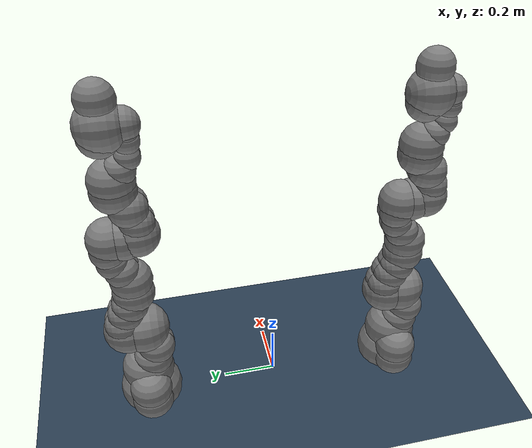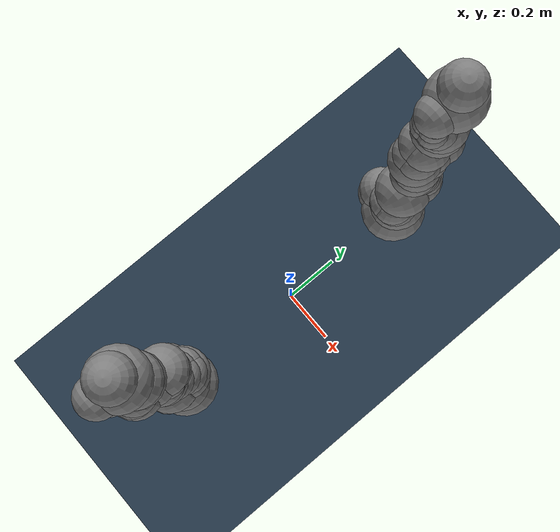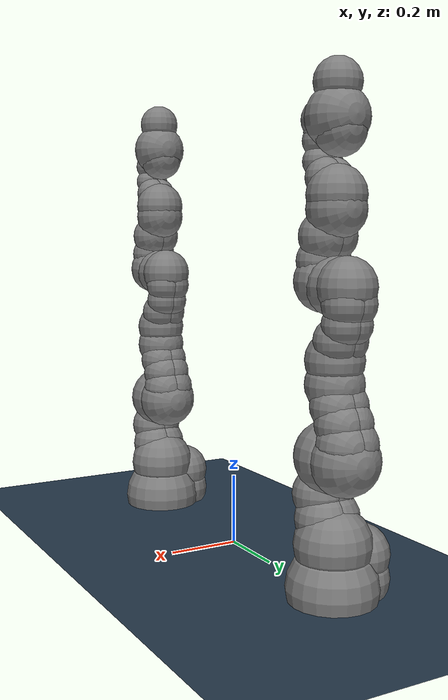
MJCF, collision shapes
<mujoco model="iiwa14 scene">
  <compiler angle="radian" meshdir="assets" autolimits="true"/>
  <option integrator="implicitfast"/>

  <default>
    <default class="iiwa">
      <material specular="0.5" shininess="0.25"/>
      <joint axis="0 0 1"/>
      <general gaintype="fixed" biastype="affine" gainprm="2000" biasprm="0 -2000 -200"/>
      <default class="joint1">
        <joint range="-2.96706 2.96706"/>
        <general ctrlrange="-2.96706 2.96706"/>
        <default class="joint2">
          <joint range="-2.0944 2.0944"/>
          <general ctrlrange="-2.0944 2.0944"/>
        </default>
      </default>
      <default class="joint3">
        <joint range="-3.05433 3.05433"/>
        <general ctrlrange="-3.05433 3.05433"/>
      </default>
      <default class="visual">
        <geom type="mesh" contype="0" conaffinity="0" group="2" material="gray"/>
      </default>
      <default class="collision">
        <geom group="3"/>
      </default>
      <site size="0.001" rgba="1 0 0 1" group="4"/>
    </default>
  </default>

  <asset>
    <material class="iiwa" name="gray" rgba="0.4 0.4 0.4 1"/>
    <material class="iiwa" name="light_gray" rgba="0.6 0.6 0.6 1"/>
    <material class="iiwa" name="black" rgba="0 0 0 1"/>
    <material class="iiwa" name="orange" rgba="1 0.423529 0.0392157 1"/>

    <mesh file="link_0.obj"/>
    <mesh file="link_1.obj"/>
    <mesh file="link_2_orange.obj"/>
    <mesh file="link_2_grey.obj"/>
    <mesh file="link_3.obj"/>
    <mesh file="band.obj"/>
    <mesh file="kuka.obj"/>
    <mesh file="link_4_orange.obj"/>
    <mesh file="link_4_grey.obj"/>
    <mesh file="link_5.obj"/>
    <mesh file="link_6_orange.obj"/>
    <mesh file="link_6_grey.obj"/>
    <mesh file="link_7.obj"/>
  </asset>

  <statistic center="0.3 0 0.4" extent="0.8" meansize="0.08"/>

  <visual>
    <headlight diffuse="0.6 0.6 0.6" ambient="0.1 0.1 0.1" specular="0 0 0"/>
    <global azimuth="120" elevation="-20"/>
  </visual>

  <asset>
    <texture name="grid" type="2d" builtin="checker" rgb1=".2 .3 .4" rgb2=".1 0.15 0.2" width="512" height="512"
      mark="cross" markrgb=".8 .8 .8"/>
    <material name="grid" texture="grid" texrepeat="1 1" texuniform="true"/>
  </asset>

  <worldbody>
    <light pos="0 0 1.5" directional="true"/>
    <geom name="floor" size="1 1 0.01" type="plane" material="grid"/>
  </worldbody>

  <include file="iiwa14_left.xml"/>

  <include file="iiwa14_right.xml"/>

  <actuator>
    <!-- 左臂执行器 -->
    <general name="left_actuator1" joint="left_joint1" class="joint1"/>
    <general name="left_actuator2" joint="left_joint2" class="joint2"/>
    <general name="left_actuator3" joint="left_joint3" class="joint1"/>
    <general name="left_actuator4" joint="left_joint4" class="joint2"/>
    <general name="left_actuator5" joint="left_joint5" class="joint1"/>
    <general name="left_actuator6" joint="left_joint6" class="joint2"/>
    <general name="left_actuator7" joint="left_joint7" class="joint3"/>

    <!-- 右臂执行器 -->
    <general name="right_actuator1" joint="right_joint1" class="joint1"/>
    <general name="right_actuator2" joint="right_joint2" class="joint2"/>
    <general name="right_actuator3" joint="right_joint3" class="joint1"/>
    <general name="right_actuator4" joint="right_joint4" class="joint2"/>
    <general name="right_actuator5" joint="right_joint5" class="joint1"/>
    <general name="right_actuator6" joint="right_joint6" class="joint2"/>
    <general name="right_actuator7" joint="right_joint7" class="joint3"/>
  </actuator>

  <contact>
        <!-- Left arm internal excludes -->
    <exclude body1="left_base"    body2="left_link1"/>
    <exclude body1="left_base"    body2="left_link2"/>
    <exclude body1="left_base"    body2="left_link3"/>
    <exclude body1="left_link1"   body2="left_link3"/>
    <exclude body1="left_link3"   body2="left_link5"/>
    <exclude body1="left_link4"   body2="left_link7"/>
    <exclude body1="left_link5"   body2="left_link7"/>

    <!-- Right arm internal excludes -->
    <exclude body1="right_base"   body2="right_link1"/>
    <exclude body1="right_base"   body2="right_link2"/>
    <exclude body1="right_base"   body2="right_link3"/>
    <exclude body1="right_link1"  body2="right_link3"/>
    <exclude body1="right_link3"  body2="right_link5"/>
    <exclude body1="right_link4"  body2="right_link7"/>
    <exclude body1="right_link5"  body2="right_link7"/>
  </contact>
</mujoco>

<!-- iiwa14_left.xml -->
<mujoco model="iiwa14">
  <compiler angle="radian" meshdir="assets" autolimits="true"/>

  <option integrator="implicitfast"/>

  <default>
    <default class="iiwa">
      <material specular="0.5" shininess="0.25"/>
      <joint axis="0 0 1"/>
      <general gaintype="fixed" biastype="affine" gainprm="2000" biasprm="0 -2000 -200"/>
      <default class="joint1">
        <joint range="-2.96706 2.96706"/>
        <general ctrlrange="-2.96706 2.96706"/>
        <default class="joint2">
          <joint range="-2.0944 2.0944"/>
          <general ctrlrange="-2.0944 2.0944"/>
        </default>
      </default>
      <default class="joint3">
        <joint range="-3.05433 3.05433"/>
        <general ctrlrange="-3.05433 3.05433"/>
      </default>
      <default class="visual">
        <geom type="mesh" contype="0" conaffinity="0" group="2" material="gray"/>
      </default>
      <default class="collision">
        <geom group="3"/>
      </default>
      <site size="0.001" rgba="1 0 0 1" group="4"/>
    </default>
  </default>

  <asset>
    <material class="iiwa" name="gray" rgba="0.4 0.4 0.4 1"/>
    <material class="iiwa" name="light_gray" rgba="0.6 0.6 0.6 1"/>
    <material class="iiwa" name="black" rgba="0 0 0 1"/>
    <material class="iiwa" name="orange" rgba="1 0.423529 0.0392157 1"/>

    <mesh file="link_0.obj"/>
    <mesh file="link_1.obj"/>
    <mesh file="link_2_orange.obj"/>
    <mesh file="link_2_grey.obj"/>
    <mesh file="link_3.obj"/>
    <mesh file="band.obj"/>
    <mesh file="kuka.obj"/>
    <mesh file="link_4_orange.obj"/>
    <mesh file="link_4_grey.obj"/>
    <mesh file="link_5.obj"/>
    <mesh file="link_6_orange.obj"/>
    <mesh file="link_6_grey.obj"/>
    <mesh file="link_7.obj"/>
  </asset>

  <worldbody>
    <light name="top" pos="0 0 2" mode="trackcom"/>
    <body name="base" pos="0 0.5 0" childclass="iiwa">
      <inertial mass="5" pos="-0.1 0 0.07" diaginertia="0.05 0.06 0.03"/>
      <geom class="visual" mesh="link_0"/>
      <geom class="collision" size="0.12" pos="0 0 0.03"/>
      <geom class="collision" size="0.08" pos="-0.08 0 0.103"/>
      <geom class="collision" size="0.08" pos="-0.08 0 0.04"/>
      <geom class="collision" size="0.1" pos="0 0 0.14"/>
      <body name="link1" pos="0 0 0.1575">
        <inertial mass="5.76" pos="0 -0.03 0.12" diaginertia="0.0333 0.033 0.0123"/>
        <joint name="joint1" class="joint1"/>
        <geom class="visual" mesh="link_1"/>
        <geom class="collision" size="0.08" pos="0 0 -0.0005"/>
        <geom class="collision" size="0.075" pos="0.01 -0.025 0.0425"/>
        <geom class="collision" size="0.075" pos="-0.01 -0.025 0.0425"/>
        <geom class="collision" size="0.07" pos="0.01 -0.045 0.1025"/>
        <geom class="collision" size="0.07" pos="-0.01 -0.045 0.1025"/>
        <body name="link2" pos="0 0 0.2025" quat="0 0 1 1">
          <inertial mass="6.35" pos="0.0003 0.059 0.042" diaginertia="0.0305 0.0304 0.011" quat="0 0 1 1"/>
          <joint name="joint2" class="joint2"/>
          <geom class="visual" material="orange" mesh="link_2_orange"/>
          <geom class="visual" mesh="link_2_grey"/>
          <geom class="collision" size="0.095" pos="0 0 -0.01"/>
          <geom class="collision" size="0.09" pos="0 0 0.045"/>
          <geom class="collision" size="0.07" pos="-0.01 0.04 0.054"/>
          <geom class="collision" size="0.065" pos="-0.01 0.09 0.04"/>
          <geom class="collision" size="0.065" pos="-0.01 0.13 0.02"/>
          <geom class="collision" size="0.07" pos="0.01 0.04 0.054"/>
          <geom class="collision" size="0.065" pos="0.01 0.09 0.04"/>
          <geom class="collision" size="0.065" pos="0.01 0.13 0.02"/>
          <geom class="collision" size="0.075" pos="0 0.18 0"/>
          <body name="link3" pos="0 0.2045 0" quat="0 0 1 1">
            <inertial mass="3.5" pos="0 0.03 0.13" diaginertia="0.025 0.0238 0.0076"/>
            <joint name="joint3" class="joint1"/>
            <geom class="visual" mesh="link_3"/>
            <geom class="visual" material="light_gray" mesh="band"/>
            <geom class="visual" material="black" mesh="kuka"/>
            <geom class="collision" size="0.075" pos="0 0 0.0355"/>
            <geom class="collision" size="0.06" pos="0.01 0.023 0.0855"/>
            <geom class="collision" size="0.055" pos="0.01 0.048 0.1255"/>
            <geom class="collision" size="0.06" pos="0.01 0.056 0.1755"/>
            <geom class="collision" size="0.06" pos="-0.01 0.023 0.0855"/>
            <geom class="collision" size="0.055" pos="-0.01 0.048 0.1255"/>
            <geom class="collision" size="0.06" pos="-0.01 0.056 0.1755"/>
            <geom class="collision" size="0.075" pos="0 0.045 0.2155"/>
            <geom class="collision" size="0.075" pos="0 0 0.2155"/>
            <body name="link4" pos="0 0 0.2155" quat="1 1 0 0">
              <inertial mass="3.5" pos="0 0.067 0.034" diaginertia="0.017 0.0164 0.006" quat="1 1 0 0"/>
              <joint name="joint4" class="joint2"/>
              <geom class="visual" material="orange" mesh="link_4_orange"/>
              <geom class="visual" mesh="link_4_grey"/>
              <geom class="collision" size="0.078" pos="0 0.01 0.046"/>
              <geom class="collision" size="0.06" pos="0.01 0.06 0.052"/>
              <geom class="collision" size="0.065" pos="0.01 0.12 0.034"/>
              <geom class="collision" size="0.06" pos="-0.01 0.06 0.052"/>
              <geom class="collision" size="0.065" pos="-0.01 0.12 0.034"/>
              <geom class="collision" size="0.075" pos="0 0.184 0"/>
              <body name="link5" pos="0 0.1845 0" quat="0 0 1 1">
                <inertial mass="3.5" pos="0.0001 0.021 0.076" diaginertia="0.01 0.0087 0.00449"/>
                <joint name="joint5" class="joint1"/>
                <geom class="visual" mesh="link_5"/>
                <geom class="visual" material="light_gray" mesh="band"/>
                <geom class="visual" material="black" mesh="kuka"/>
                <geom class="collision" size="0.075" pos="0 0 0.0335"/>
                <geom class="collision" size="0.05" pos="-0.012 0.031 0.0755"/>
                <geom class="collision" size="0.05" pos="0.012 0.031 0.0755"/>
                <geom class="collision" size="0.04" pos="-0.012 0.06 0.1155"/>
                <geom class="collision" size="0.04" pos="0.012 0.06 0.1155"/>
                <geom class="collision" size="0.04" pos="-0.01 0.065 0.1655"/>
                <geom class="collision" size="0.04" pos="0.01 0.065 0.1655"/>
                <geom class="collision" size="0.035" pos="-0.012 0.065 0.1855"/>
                <geom class="collision" size="0.035" pos="0.012 0.065 0.1855"/>
                <body name="link6" pos="0 0 0.2155" quat="1 1 0 0">
                  <inertial mass="1.8" pos="0 0.0006 0.0004" diaginertia="0.0049 0.0047 0.0036" quat="1 1 0 0"/>
                  <joint name="joint6" class="joint2"/>
                  <geom class="visual" material="orange" mesh="link_6_orange"/>
                  <geom class="visual" mesh="link_6_grey"/>
                  <geom class="collision" size="0.055" pos="0 0 -0.059"/>
                  <geom class="collision" size="0.065" pos="0 -0.03 0.011"/>
                  <geom class="collision" size="0.08"/>
                  <body name="link7" pos="0 0.081 0" quat="0 0 1 1">
                    <inertial mass="1.2" pos="0 0 0.02" diaginertia="0.001 0.001 0.001"/>
                    <joint name="joint7" class="joint3"/>
                    <geom class="visual" mesh="link_7"/>
                    <geom class="collision" size="0.06" pos="0 0 0.001"/>
                    <site pos="0 0 0.045" name="attachment_site"/>
<!--                      &lt;!&ndash; 夹爪基座 &ndash;&gt;-->
<!--                      &lt;!&ndash; 可视化夹爪底座（可选） &ndash;&gt;-->

<!--                      &lt;!&ndash; 左手指 &ndash;&gt;-->

<!--                      &lt;!&ndash; 右手指 &ndash;&gt;-->
                  </body>
                </body>
              </body>
            </body>
          </body>
        </body>
      </body>
    </body>
  </worldbody>

  <contact>
    <exclude body1="base" body2="link1"/>
    <exclude body1="base" body2="link2"/>
    <exclude body1="base" body2="link3"/>
    <exclude body1="link1" body2="link3"/>
    <exclude body1="link3" body2="link5"/>
    <exclude body1="link4" body2="link7"/>
    <exclude body1="link5" body2="link7"/>
  </contact>

  <actuator>
    <general name="actuator1" joint="joint1" class="joint1"/>
    <general name="actuator2" joint="joint2" class="joint2"/>
    <general name="actuator3" joint="joint3" class="joint1"/>
    <general name="actuator4" joint="joint4" class="joint2"/>
    <general name="actuator5" joint="joint5" class="joint1"/>
    <general name="actuator6" joint="joint6" class="joint2"/>
    <general name="actuator7" joint="joint7" class="joint3"/>

  </actuator>

  <keyframe>
    <key name="home" qpos="0 0 0 -1.5708 0 1.5708 0" ctrl="0 0 0 -1.5708 0 1.5708 0"/>
  </keyframe>
</mujoco>

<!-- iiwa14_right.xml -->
<mujoco model="iiwa14">
  <compiler angle="radian" meshdir="assets" autolimits="true"/>

  <option integrator="implicitfast"/>

  <asset>
    <material class="iiwa" name="gray" rgba="0.4 0.4 0.4 1"/>
    <material class="iiwa" name="light_gray" rgba="0.6 0.6 0.6 1"/>
    <material class="iiwa" name="black" rgba="0 0 0 1"/>
    <material class="iiwa" name="orange" rgba="1 0.423529 0.0392157 1"/>

    <mesh file="link_0.obj"/>
    <mesh file="link_1.obj"/>
    <mesh file="link_2_orange.obj"/>
    <mesh file="link_2_grey.obj"/>
    <mesh file="link_3.obj"/>
    <mesh file="band.obj"/>
    <mesh file="kuka.obj"/>
    <mesh file="link_4_orange.obj"/>
    <mesh file="link_4_grey.obj"/>
    <mesh file="link_5.obj"/>
    <mesh file="link_6_orange.obj"/>
    <mesh file="link_6_grey.obj"/>
    <mesh file="link_7.obj"/>
  </asset>

  <worldbody>
    <light name="top" pos="0 0 2" mode="trackcom"/>
    <body name="base" pos="0 -0.5 0" childclass="iiwa">
      <inertial mass="5" pos="-0.1 0 0.07" diaginertia="0.05 0.06 0.03"/>
      <geom class="visual" mesh="link_0"/>
      <geom class="collision" size="0.12" pos="0 0 0.03"/>
      <geom class="collision" size="0.08" pos="-0.08 0 0.103"/>
      <geom class="collision" size="0.08" pos="-0.08 0 0.04"/>
      <geom class="collision" size="0.1" pos="0 0 0.14"/>
      <body name="link1" pos="0 0 0.1575">
        <inertial mass="5.76" pos="0 -0.03 0.12" diaginertia="0.0333 0.033 0.0123"/>
        <joint name="joint1" class="joint1"/>
        <geom class="visual" mesh="link_1"/>
        <geom class="collision" size="0.08" pos="0 0 -0.0005"/>
        <geom class="collision" size="0.075" pos="0.01 -0.025 0.0425"/>
        <geom class="collision" size="0.075" pos="-0.01 -0.025 0.0425"/>
        <geom class="collision" size="0.07" pos="0.01 -0.045 0.1025"/>
        <geom class="collision" size="0.07" pos="-0.01 -0.045 0.1025"/>
        <body name="link2" pos="0 0 0.2025" quat="0 0 1 1">
          <inertial mass="6.35" pos="0.0003 0.059 0.042" diaginertia="0.0305 0.0304 0.011" quat="0 0 1 1"/>
          <joint name="joint2" class="joint2"/>
          <geom class="visual" material="orange" mesh="link_2_orange"/>
          <geom class="visual" mesh="link_2_grey"/>
          <geom class="collision" size="0.095" pos="0 0 -0.01"/>
          <geom class="collision" size="0.09" pos="0 0 0.045"/>
          <geom class="collision" size="0.07" pos="-0.01 0.04 0.054"/>
          <geom class="collision" size="0.065" pos="-0.01 0.09 0.04"/>
          <geom class="collision" size="0.065" pos="-0.01 0.13 0.02"/>
          <geom class="collision" size="0.07" pos="0.01 0.04 0.054"/>
          <geom class="collision" size="0.065" pos="0.01 0.09 0.04"/>
          <geom class="collision" size="0.065" pos="0.01 0.13 0.02"/>
          <geom class="collision" size="0.075" pos="0 0.18 0"/>
          <body name="link3" pos="0 0.2045 0" quat="0 0 1 1">
            <inertial mass="3.5" pos="0 0.03 0.13" diaginertia="0.025 0.0238 0.0076"/>
            <joint name="joint3" class="joint1"/>
            <geom class="visual" mesh="link_3"/>
            <geom class="visual" material="light_gray" mesh="band"/>
            <geom class="visual" material="black" mesh="kuka"/>
            <geom class="collision" size="0.075" pos="0 0 0.0355"/>
            <geom class="collision" size="0.06" pos="0.01 0.023 0.0855"/>
            <geom class="collision" size="0.055" pos="0.01 0.048 0.1255"/>
            <geom class="collision" size="0.06" pos="0.01 0.056 0.1755"/>
            <geom class="collision" size="0.06" pos="-0.01 0.023 0.0855"/>
            <geom class="collision" size="0.055" pos="-0.01 0.048 0.1255"/>
            <geom class="collision" size="0.06" pos="-0.01 0.056 0.1755"/>
            <geom class="collision" size="0.075" pos="0 0.045 0.2155"/>
            <geom class="collision" size="0.075" pos="0 0 0.2155"/>
            <body name="link4" pos="0 0 0.2155" quat="1 1 0 0">
              <inertial mass="3.5" pos="0 0.067 0.034" diaginertia="0.017 0.0164 0.006" quat="1 1 0 0"/>
              <joint name="joint4" class="joint2"/>
              <geom class="visual" material="orange" mesh="link_4_orange"/>
              <geom class="visual" mesh="link_4_grey"/>
              <geom class="collision" size="0.078" pos="0 0.01 0.046"/>
              <geom class="collision" size="0.06" pos="0.01 0.06 0.052"/>
              <geom class="collision" size="0.065" pos="0.01 0.12 0.034"/>
              <geom class="collision" size="0.06" pos="-0.01 0.06 0.052"/>
              <geom class="collision" size="0.065" pos="-0.01 0.12 0.034"/>
              <geom class="collision" size="0.075" pos="0 0.184 0"/>
              <body name="link5" pos="0 0.1845 0" quat="0 0 1 1">
                <inertial mass="3.5" pos="0.0001 0.021 0.076" diaginertia="0.01 0.0087 0.00449"/>
                <joint name="joint5" class="joint1"/>
                <geom class="visual" mesh="link_5"/>
                <geom class="visual" material="light_gray" mesh="band"/>
                <geom class="visual" material="black" mesh="kuka"/>
                <geom class="collision" size="0.075" pos="0 0 0.0335"/>
                <geom class="collision" size="0.05" pos="-0.012 0.031 0.0755"/>
                <geom class="collision" size="0.05" pos="0.012 0.031 0.0755"/>
                <geom class="collision" size="0.04" pos="-0.012 0.06 0.1155"/>
                <geom class="collision" size="0.04" pos="0.012 0.06 0.1155"/>
                <geom class="collision" size="0.04" pos="-0.01 0.065 0.1655"/>
                <geom class="collision" size="0.04" pos="0.01 0.065 0.1655"/>
                <geom class="collision" size="0.035" pos="-0.012 0.065 0.1855"/>
                <geom class="collision" size="0.035" pos="0.012 0.065 0.1855"/>
                <body name="link6" pos="0 0 0.2155" quat="1 1 0 0">
                  <inertial mass="1.8" pos="0 0.0006 0.0004" diaginertia="0.0049 0.0047 0.0036" quat="1 1 0 0"/>
                  <joint name="joint6" class="joint2"/>
                  <geom class="visual" material="orange" mesh="link_6_orange"/>
                  <geom class="visual" mesh="link_6_grey"/>
                  <geom class="collision" size="0.055" pos="0 0 -0.059"/>
                  <geom class="collision" size="0.065" pos="0 -0.03 0.011"/>
                  <geom class="collision" size="0.08"/>
                  <body name="link7" pos="0 0.081 0" quat="0 0 1 1">
                    <inertial mass="1.2" pos="0 0 0.02" diaginertia="0.001 0.001 0.001"/>
                    <joint name="joint7" class="joint3"/>
                    <geom class="visual" mesh="link_7"/>
                    <geom class="collision" size="0.06" pos="0 0 0.001"/>
                    <site pos="0 0 0.045" name="attachment_site"/>
<!--                      &lt;!&ndash; 夹爪基座 &ndash;&gt;-->
<!--                      &lt;!&ndash; 可视化夹爪底座（可选） &ndash;&gt;-->

<!--                      &lt;!&ndash; 左手指 &ndash;&gt;-->

<!--                      &lt;!&ndash; 右手指 &ndash;&gt;-->
                  </body>
                </body>
              </body>
            </body>
          </body>
        </body>
      </body>
    </body>
  </worldbody>

  <contact>
    <exclude body1="base" body2="link1"/>
    <exclude body1="base" body2="link2"/>
    <exclude body1="base" body2="link3"/>
    <exclude body1="link1" body2="link3"/>
    <exclude body1="link3" body2="link5"/>
    <exclude body1="link4" body2="link7"/>
    <exclude body1="link5" body2="link7"/>
  </contact>

  <actuator>
    <general name="actuator1" joint="joint1" class="joint1"/>
    <general name="actuator2" joint="joint2" class="joint2"/>
    <general name="actuator3" joint="joint3" class="joint1"/>
    <general name="actuator4" joint="joint4" class="joint2"/>
    <general name="actuator5" joint="joint5" class="joint1"/>
    <general name="actuator6" joint="joint6" class="joint2"/>
    <general name="actuator7" joint="joint7" class="joint3"/>

  </actuator>

  <keyframe>
    <key name="home" qpos="0 0 0 -1.5708 0 1.5708 0" ctrl="0 0 0 -1.5708 0 1.5708 0"/>
  </keyframe>
</mujoco>
